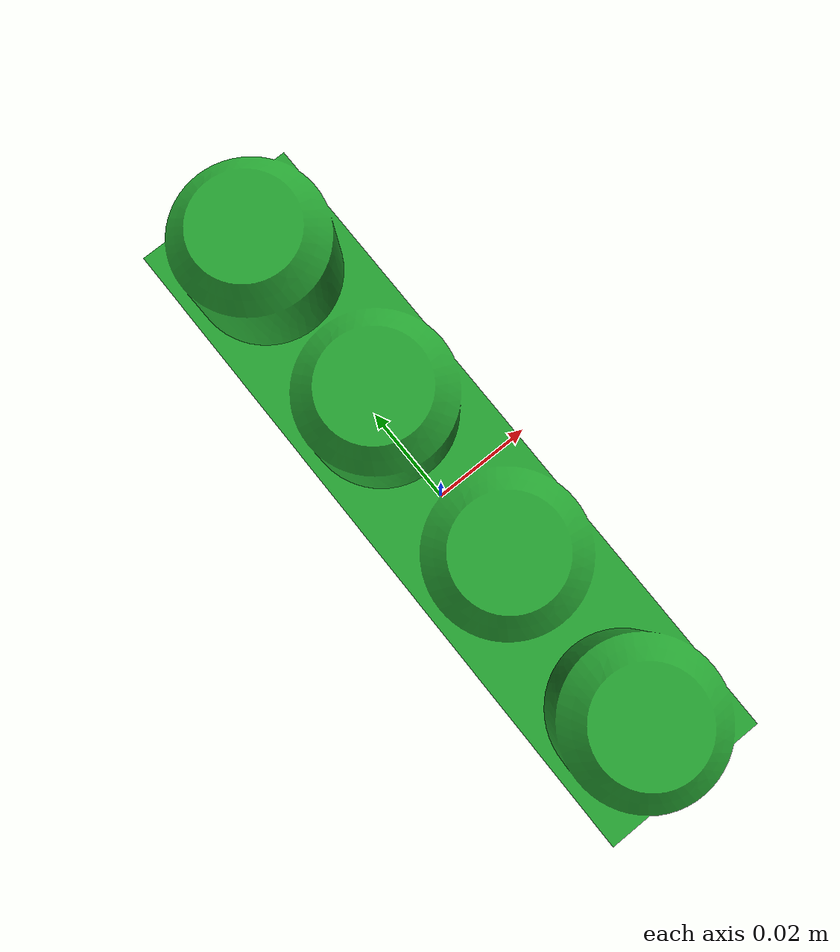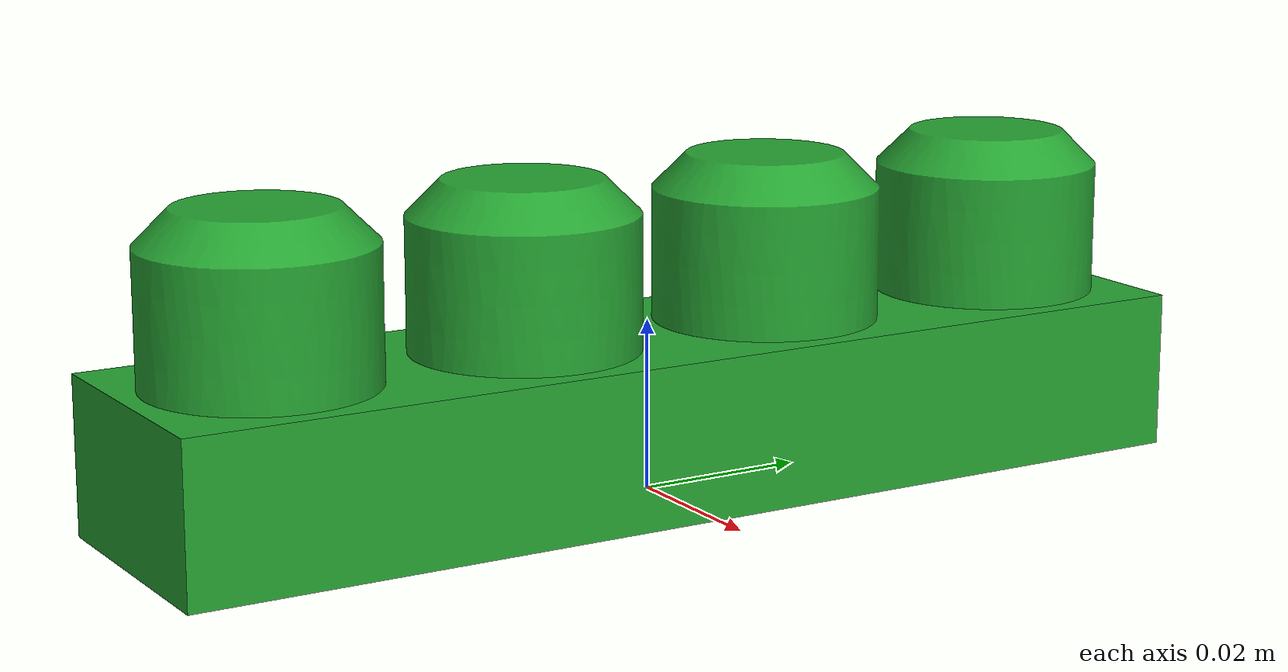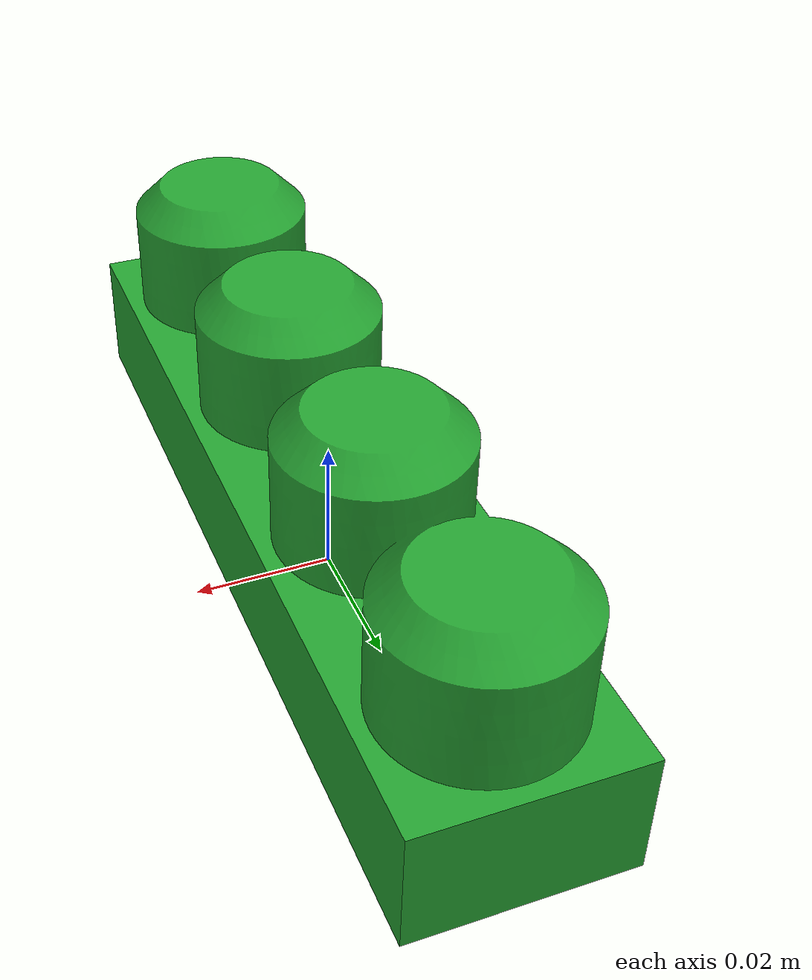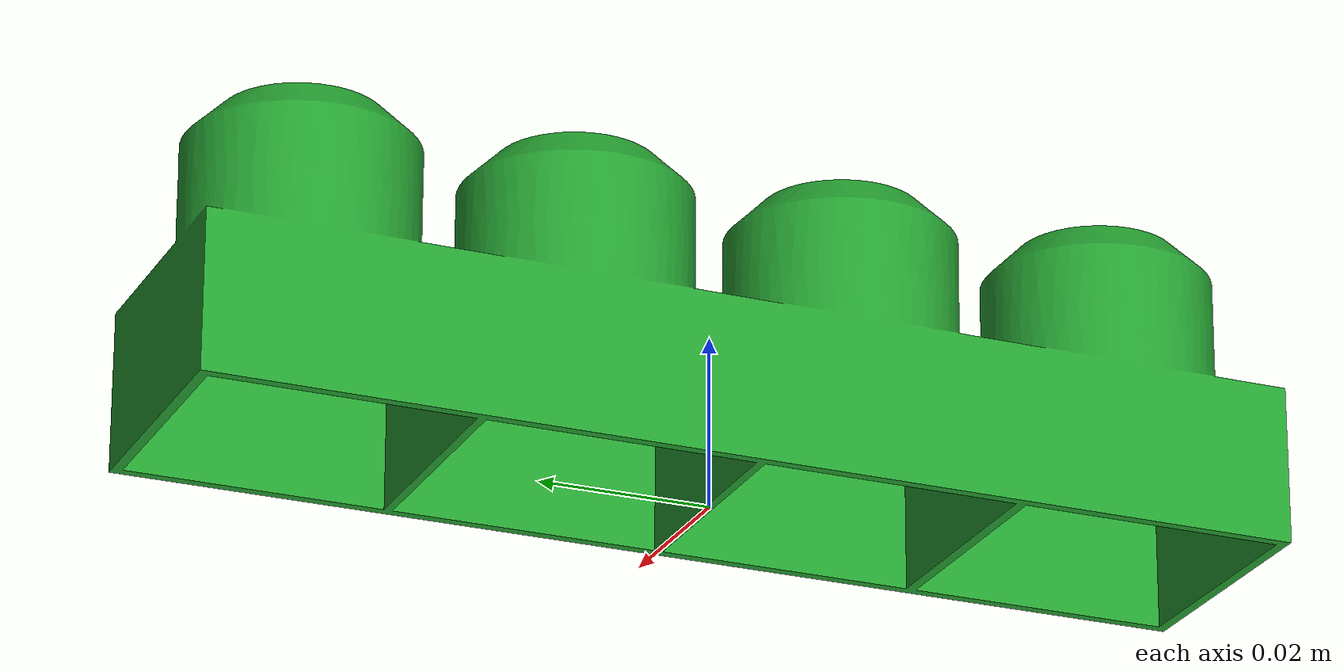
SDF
<?xml version='1.0'?>
<sdf version="1.6">

         <model name="mesh_X1-Y4-Z1">
             <static>0</static>
             <self_collide>0</self_collide>
             <allow_auto_disable>1</allow_auto_disable>

            <pose>0 0 0 0 -0 0</pose>

             <link name="link">

                 <gravity>1</gravity>
                 <self_collide>0</self_collide>
                 <kinematic>0</kinematic>

                <inertial>
                    <!-- Volume:  1.9289503000e-05 -->
                    <mass> 1.0 </mass>

                    <!-- Center of mass:  7.0000000000e-08 -1.3031000000e-04  1.9279910000e-02 -->
                    <pose>  7.0000000000e-08 -1.3031000000e-04  1.9279910000e-02 0 0 0 </pose>

                    <!-- Inertia matrix -->
                    <inertia>
                        <ixx>  1.5764852055e-03 </ixx>
                        <ixy> -2.6957667079e-10 </ixy>
                        <ixz>  2.1566133663e-09 </ixz>
                        <iyy>  2.3807605100e-04 </iyy>
                        <iyz> -1.3857018504e-06 </iyz>
                        <izz>  1.5716815306e-03 </izz>
                    </inertia>
                </inertial>

                 <collision name="collision">
                     <!--
                         Maximum number of contacts allowed between two entities.
                         This value overrides the max_contacts element defined in physics.
                     -->
                     <max_contacts>20</max_contacts>

                     <pose>0 0 0 0 -0 0</pose>

                     <geometry>
                         <mesh>
                             <uri>model://X1-Y4-Z1/mesh/X1-Y4-Z1.stl</uri>
                             <!-- Scaling factor applied to the mesh -->
                             <scale>1.0 1.0 1.0</scale>
                         </mesh>
                     </geometry>
                     <!-- http://sdformat.org/spec?ver=1.6&elem=collision#surface_soft_contact -->
                     <surface></surface>
                 </collision>

                 <visual name="visual">
                     <cast_shadows>1</cast_shadows>
                     <transparency>0</transparency>

                     <pose>0 0 0 0 -0 0</pose>

                     <material>

                         <script>
                             <uri>file://media/materials/scripts/gazebo.material</uri>
                             <name>Gazebo/Green</name>
                         </script>
                         <shader type="vertex">
                           <normal_map>__default__</normal_map>
                         </shader>

                         <lighting>1</lighting>
 		                <ambient>0.15 0.75 0.35 1</ambient>
 		                <diffuse>0.1 0.95 0.25 1</diffuse>
 		                <specular>0.01 0.01 0.01 1</specular>
 		                <emissive>0 0 0 1</emissive>
                     </material>

                     <geometry>
                         <mesh>
                             <uri>model://X1-Y4-Z1/mesh/X1-Y4-Z1.stl</uri>
                             <!-- Scaling factor applied to the mesh -->
                             <scale>1.0 1.0 1.0</scale>
                         </mesh>
                     </geometry>
                 </visual>
             </link>
         </model>
     </sdf>
